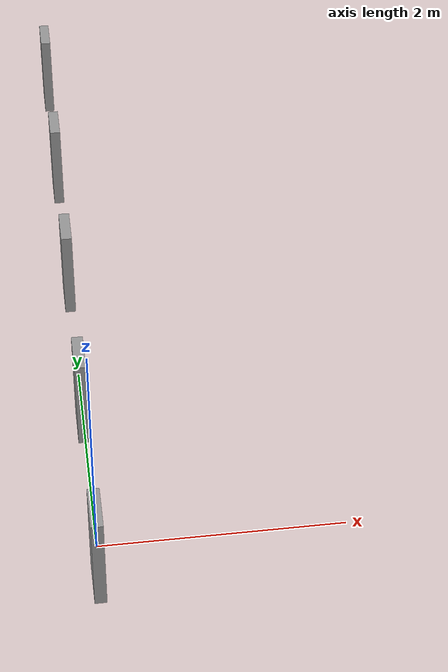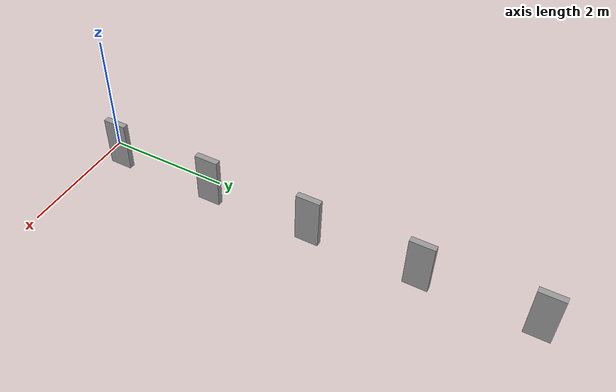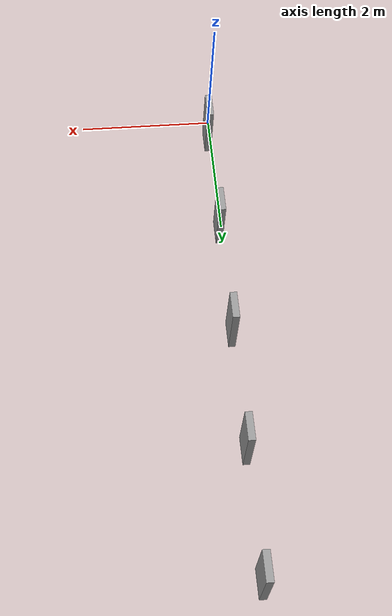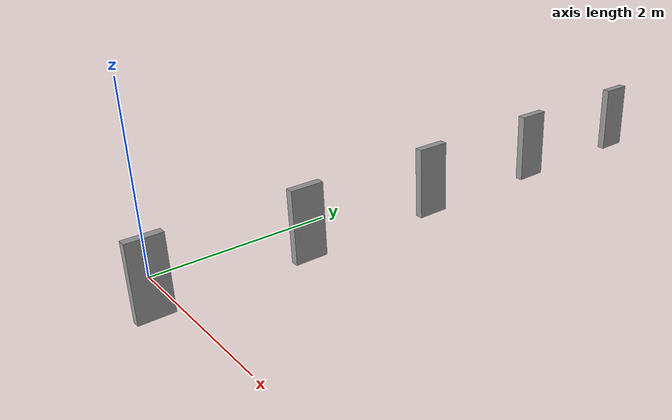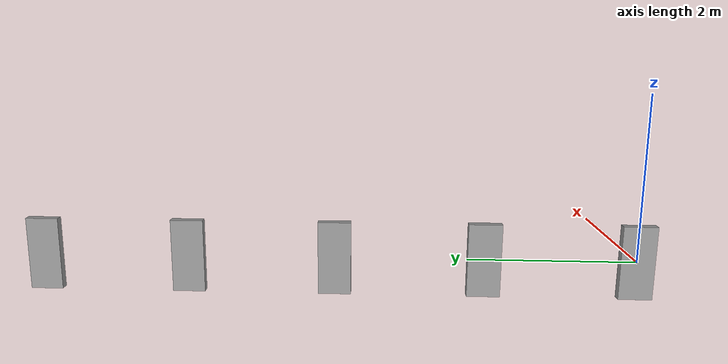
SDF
<?xml version="1.0" ?>

<sdf version="1.5">
  <world name="default">
    <physics type="ode">
      <max_step_size>0.001</max_step_size>
      <gravity>0 0 0</gravity>
    </physics>

    <model name="box_0">
      <link name="link">
        <pose>0 0.0 0  0 0 0</pose>
        <inertial>
          <mass>10</mass>
          <inertia>
            <ixx>0.8083333333333335</ixx>
            <iyy>0.6833333333333335</iyy>
            <izz>0.14166666666666672</izz>
            <ixy>0</ixy>
            <ixz>0</ixz>
            <iyz>0</iyz>
          </inertia>
        </inertial>
        <collision name="collision">
          <geometry>
            <box>
              <size>0.1 0.4 0.9</size>
            </box>
          </geometry>
        </collision>
        <visual name="visual">
          <geometry>
            <box>
              <size>0.1 0.4 0.9</size>
            </box>
          </geometry>
          <material>
            <script>
              <uri>file://media/materials/scripts/gazebo.material</uri>
              <name>Gazebo/Grey</name>
            </script>
          </material>
        </visual>
      </link>
      <plugin name="box_0" filename="libInitialVelocityPlugin.so">
        <linear>-0.9 0.4 0.1</linear>
        <angular>0.5 0.0 0.0</angular>
      </plugin>
    </model>

    <model name="box_1">
      <link name="link">
        <pose>0 1.8 0  0 0 0</pose>
        <inertial>
          <mass>10</mass>
          <inertia>
            <ixx>0.8083333333333335</ixx>
            <iyy>0.6833333333333335</iyy>
            <izz>0.14166666666666672</izz>
            <ixy>0</ixy>
            <ixz>0</ixz>
            <iyz>0</iyz>
          </inertia>
        </inertial>
        <collision name="collision">
          <geometry>
            <box>
              <size>0.1 0.4 0.9</size>
            </box>
          </geometry>
        </collision>
        <visual name="visual">
          <geometry>
            <box>
              <size>0.1 0.4 0.9</size>
            </box>
          </geometry>
          <material>
            <script>
              <uri>file://media/materials/scripts/gazebo.material</uri>
              <name>Gazebo/Grey</name>
            </script>
          </material>
        </visual>
      </link>
      <plugin name="box_1" filename="libInitialVelocityPlugin.so">
        <linear>-0.9 0.4 0.1</linear>
        <angular>0.5 0.0 0.0</angular>
      </plugin>
    </model>

    <model name="box_2">
      <link name="link">
        <pose>0 3.6 0  0 0 0</pose>
        <inertial>
          <mass>10</mass>
          <inertia>
            <ixx>0.8083333333333335</ixx>
            <iyy>0.6833333333333335</iyy>
            <izz>0.14166666666666672</izz>
            <ixy>0</ixy>
            <ixz>0</ixz>
            <iyz>0</iyz>
          </inertia>
        </inertial>
        <collision name="collision">
          <geometry>
            <box>
              <size>0.1 0.4 0.9</size>
            </box>
          </geometry>
        </collision>
        <visual name="visual">
          <geometry>
            <box>
              <size>0.1 0.4 0.9</size>
            </box>
          </geometry>
          <material>
            <script>
              <uri>file://media/materials/scripts/gazebo.material</uri>
              <name>Gazebo/Grey</name>
            </script>
          </material>
        </visual>
      </link>
      <plugin name="box_2" filename="libInitialVelocityPlugin.so">
        <linear>-0.9 0.4 0.1</linear>
        <angular>0.5 0.0 0.0</angular>
      </plugin>
    </model>

    <model name="box_3">
      <link name="link">
        <pose>0 5.4 0  0 0 0</pose>
        <inertial>
          <mass>10</mass>
          <inertia>
            <ixx>0.8083333333333335</ixx>
            <iyy>0.6833333333333335</iyy>
            <izz>0.14166666666666672</izz>
            <ixy>0</ixy>
            <ixz>0</ixz>
            <iyz>0</iyz>
          </inertia>
        </inertial>
        <collision name="collision">
          <geometry>
            <box>
              <size>0.1 0.4 0.9</size>
            </box>
          </geometry>
        </collision>
        <visual name="visual">
          <geometry>
            <box>
              <size>0.1 0.4 0.9</size>
            </box>
          </geometry>
          <material>
            <script>
              <uri>file://media/materials/scripts/gazebo.material</uri>
              <name>Gazebo/Grey</name>
            </script>
          </material>
        </visual>
      </link>
      <plugin name="box_3" filename="libInitialVelocityPlugin.so">
        <linear>-0.9 0.4 0.1</linear>
        <angular>0.5 0.0 0.0</angular>
      </plugin>
    </model>

    <model name="box_4">
      <link name="link">
        <pose>0 7.2 0  0 0 0</pose>
        <inertial>
          <mass>10</mass>
          <inertia>
            <ixx>0.8083333333333335</ixx>
            <iyy>0.6833333333333335</iyy>
            <izz>0.14166666666666672</izz>
            <ixy>0</ixy>
            <ixz>0</ixz>
            <iyz>0</iyz>
          </inertia>
        </inertial>
        <collision name="collision">
          <geometry>
            <box>
              <size>0.1 0.4 0.9</size>
            </box>
          </geometry>
        </collision>
        <visual name="visual">
          <geometry>
            <box>
              <size>0.1 0.4 0.9</size>
            </box>
          </geometry>
          <material>
            <script>
              <uri>file://media/materials/scripts/gazebo.material</uri>
              <name>Gazebo/Grey</name>
            </script>
          </material>
        </visual>
      </link>
      <plugin name="box_4" filename="libInitialVelocityPlugin.so">
        <linear>-0.9 0.4 0.1</linear>
        <angular>0.5 0.0 0.0</angular>
      </plugin>
    </model>

    <gui fullscreen='0'>
      <camera name='user_camera'>
        <pose>8.5 5.5 0.3  0 0 3.14159</pose>
        <view_controller>orbit</view_controller>
      </camera>
    </gui>
  </world>
</sdf>
